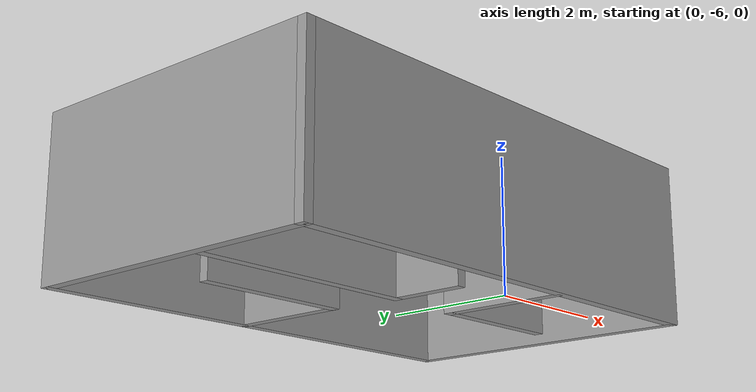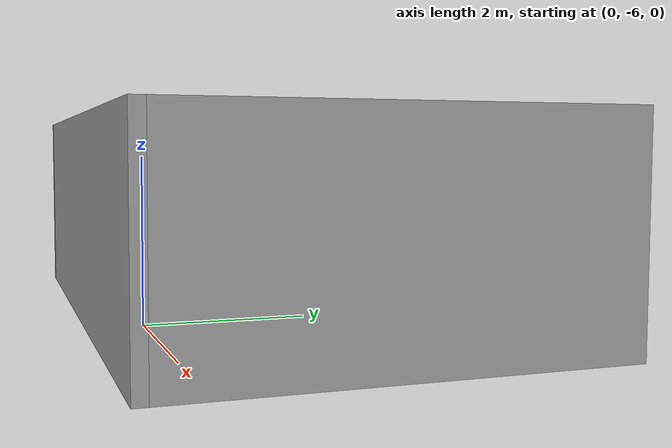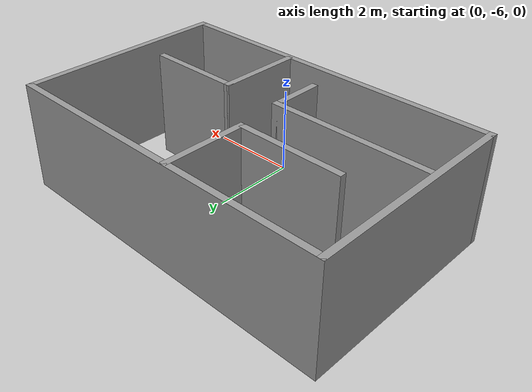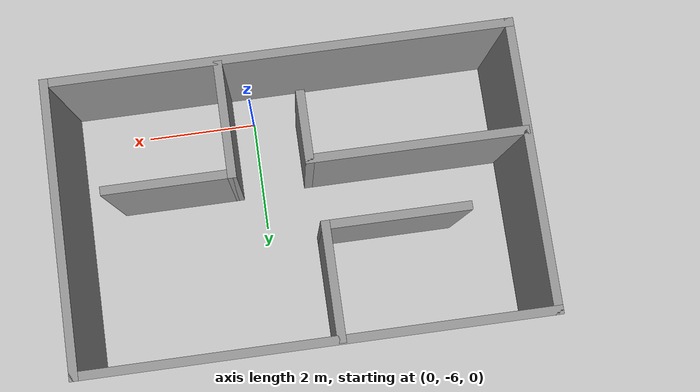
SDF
<?xml version='1.0'?>
<sdf version='1.7'>
  <model name='room'>
    <pose>-0.575 -3.3425 0 0 -0 0</pose>
    <link name='Wall_0'>
      <collision name='Wall_0_Collision'>
        <geometry>
          <box>
            <size>8 0.15 2.5</size>
          </box>
        </geometry>
        <pose>0 0 1.25 0 -0 0</pose>
      </collision>
      <visual name='Wall_0_Visual'>
        <pose>0 0 1.25 0 -0 0</pose>
        <geometry>
          <box>
            <size>8 0.15 2.5</size>
          </box>
        </geometry>
        <material>
          <script>
            <uri>file://media/materials/scripts/gazebo.material</uri>
            <name>Gazebo/Grey</name>
          </script>
          <ambient>1 1 1 1</ambient>
        </material>
        <meta>
          <layer>0</layer>
        </meta>
      </visual>
      <pose>0 1.5825 0 0 -0 0</pose>
    </link>
    <link name='Wall_1'>
      <collision name='Wall_1_Collision'>
        <geometry>
          <box>
            <size>5 0.15 2.5</size>
          </box>
        </geometry>
        <pose>0 0 1.25 0 -0 0</pose>
      </collision>
      <visual name='Wall_1_Visual'>
        <pose>0 0 1.25 0 -0 0</pose>
        <geometry>
          <box>
            <size>5 0.15 2.5</size>
          </box>
        </geometry>
        <material>
          <script>
            <uri>file://media/materials/scripts/gazebo.material</uri>
            <name>Gazebo/Grey</name>
          </script>
          <ambient>1 1 1 1</ambient>
        </material>
        <meta>
          <layer>0</layer>
        </meta>
      </visual>
      <pose>3.925 -0.8425 0 0 -0 -1.5708</pose>
    </link>
    <link name='Wall_11'>
      <collision name='Wall_11_Collision'>
        <geometry>
          <box>
            <size>2 0.15 2.5</size>
          </box>
        </geometry>
        <pose>0 0 1.25 0 -0 0</pose>
      </collision>
      <visual name='Wall_11_Visual'>
        <pose>0 0 1.25 0 -0 0</pose>
        <geometry>
          <box>
            <size>2 0.15 2.5</size>
          </box>
        </geometry>
        <material>
          <script>
            <uri>file://media/materials/scripts/gazebo.material</uri>
            <name>Gazebo/Grey</name>
          </script>
          <ambient>1 1 1 1</ambient>
        </material>
        <meta>
          <layer>0</layer>
        </meta>
      </visual>
      <pose>1.015 -2.2625 0 0 -0 1.5708</pose>
    </link>
    <link name='Wall_12'>
      <collision name='Wall_12_Collision'>
        <geometry>
          <box>
            <size>2.25 0.15 2.5</size>
          </box>
        </geometry>
        <pose>0 0 1.25 0 -0 0</pose>
      </collision>
      <visual name='Wall_12_Visual'>
        <pose>0 0 1.25 0 -0 0</pose>
        <geometry>
          <box>
            <size>2.25 0.15 2.5</size>
          </box>
        </geometry>
        <material>
          <script>
            <uri>file://media/materials/scripts/gazebo.material</uri>
            <name>Gazebo/Grey</name>
          </script>
          <ambient>1 1 1 1</ambient>
        </material>
        <meta>
          <layer>0</layer>
        </meta>
      </visual>
      <pose>2.065 -1.3375 0 0 -0 0</pose>
    </link>
    <link name='Wall_2'>
      <collision name='Wall_2_Collision'>
        <geometry>
          <box>
            <size>8 0.15 2.5</size>
          </box>
        </geometry>
        <pose>0 0 1.25 0 -0 0</pose>
      </collision>
      <visual name='Wall_2_Visual'>
        <pose>0 0 1.25 0 -0 0</pose>
        <geometry>
          <box>
            <size>8 0.15 2.5</size>
          </box>
        </geometry>
        <material>
          <script>
            <uri>file://media/materials/scripts/gazebo.material</uri>
            <name>Gazebo/Grey</name>
          </script>
          <ambient>1 1 1 1</ambient>
        </material>
        <meta>
          <layer>0</layer>
        </meta>
      </visual>
      <pose>0 -3.2675 0 0 -0 3.14159</pose>
    </link>
    <link name='Wall_3'>
      <collision name='Wall_3_Collision'>
        <geometry>
          <box>
            <size>5 0.15 2.5</size>
          </box>
        </geometry>
        <pose>0 0 1.25 0 -0 0</pose>
      </collision>
      <visual name='Wall_3_Visual'>
        <pose>0 0 1.25 0 -0 0</pose>
        <geometry>
          <box>
            <size>5 0.15 2.5</size>
          </box>
        </geometry>
        <material>
          <script>
            <uri>file://media/materials/scripts/gazebo.material</uri>
            <name>Gazebo/Grey</name>
          </script>
          <ambient>1 1 1 1</ambient>
        </material>
        <meta>
          <layer>0</layer>
        </meta>
      </visual>
      <pose>-3.925 -0.8425 0 0 -0 1.5708</pose>
    </link>
    <link name='Wall_5'>
      <collision name='Wall_5_Collision'>
        <geometry>
          <box>
            <size>2 0.15 2.5</size>
          </box>
        </geometry>
        <pose>0 0 1.25 0 -0 0</pose>
      </collision>
      <visual name='Wall_5_Visual'>
        <pose>0 0 1.25 0 -0 0</pose>
        <geometry>
          <box>
            <size>2 0.15 2.5</size>
          </box>
        </geometry>
        <material>
          <script>
            <uri>file://media/materials/scripts/gazebo.material</uri>
            <name>Gazebo/Grey</name>
          </script>
          <ambient>1 1 1 1</ambient>
        </material>
        <meta>
          <layer>0</layer>
        </meta>
      </visual>
      <pose>-0.395 0.6375 0 0 -0 -1.5708</pose>
    </link>
    <link name='Wall_6'>
      <collision name='Wall_6_Collision'>
        <geometry>
          <box>
            <size>2.5 0.15 2.5</size>
          </box>
        </geometry>
        <pose>0 0 1.25 0 -0 0</pose>
      </collision>
      <visual name='Wall_6_Visual'>
        <pose>0 0 1.25 0 -0 0</pose>
        <geometry>
          <box>
            <size>2.5 0.15 2.5</size>
          </box>
        </geometry>
        <material>
          <script>
            <uri>file://media/materials/scripts/gazebo.material</uri>
            <name>Gazebo/Grey</name>
          </script>
          <ambient>1 1 1 1</ambient>
        </material>
        <meta>
          <layer>0</layer>
        </meta>
      </visual>
      <pose>-1.57 -0.2875 0 0 -0 3.14159</pose>
    </link>
    <link name='Wall_8'>
      <collision name='Wall_8_Collision'>
        <geometry>
          <box>
            <size>3.75 0.15 2.5</size>
          </box>
        </geometry>
        <pose>0 0 1.25 0 -0 0</pose>
      </collision>
      <visual name='Wall_8_Visual'>
        <pose>0 0 1.25 0 -0 0</pose>
        <geometry>
          <box>
            <size>3.75 0.15 2.5</size>
          </box>
        </geometry>
        <material>
          <script>
            <uri>file://media/materials/scripts/gazebo.material</uri>
            <name>Gazebo/Grey</name>
          </script>
          <ambient>1 1 1 1</ambient>
        </material>
        <meta>
          <layer>0</layer>
        </meta>
      </visual>
      <pose>-2.085 -1.4075 0 0 -0 0</pose>
    </link>
    <link name='Wall_9'>
      <collision name='Wall_9_Collision'>
        <geometry>
          <box>
            <size>1.25 0.15 2.5</size>
          </box>
        </geometry>
        <pose>0 0 1.25 0 -0 0</pose>
      </collision>
      <visual name='Wall_9_Visual'>
        <pose>0 0 1.25 0 -0 0</pose>
        <geometry>
          <box>
            <size>1.25 0.15 2.5</size>
          </box>
        </geometry>
        <material>
          <script>
            <uri>file://media/materials/scripts/gazebo.material</uri>
            <name>Gazebo/Grey</name>
          </script>
          <ambient>1 1 1 1</ambient>
        </material>
        <meta>
          <layer>0</layer>
        </meta>
      </visual>
      <pose>-0.285 -1.9575 0 0 -0 -1.5708</pose>
    </link>
    <static>1</static>
  </model>
</sdf>
